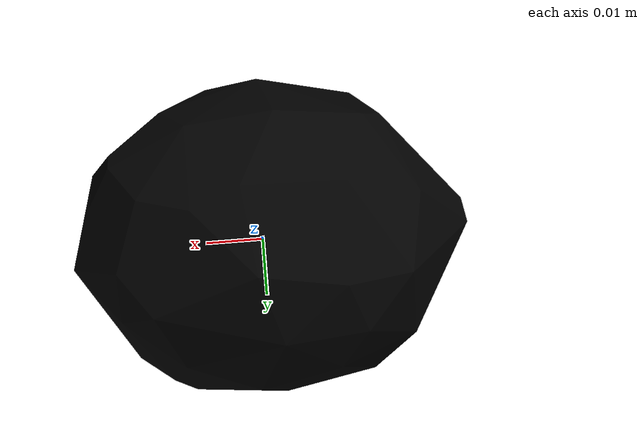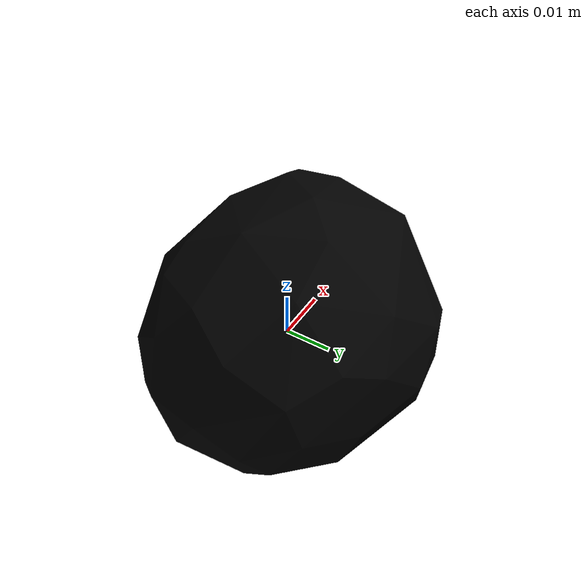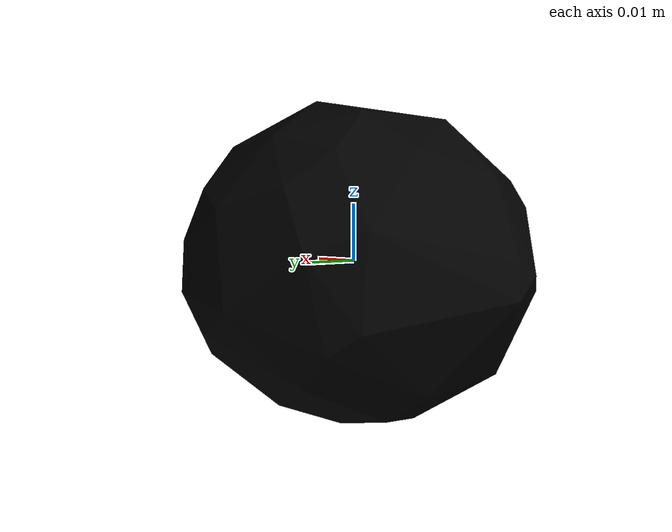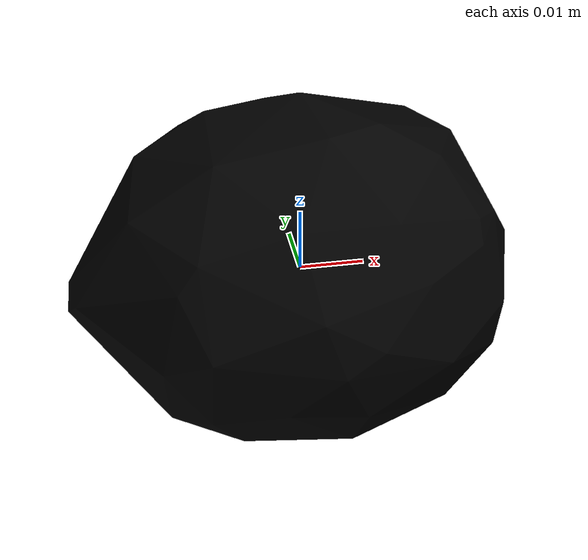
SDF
<?xml version="1.0"?>
<sdf version="1.4">
  <model name="014_lemon_textured">
    <pose>0 0 0  0 0 0</pose>
    <link name="body">
      <inertial>
        <mass> 1.0 </mass>
        <pose>0 0 0 0 0 0</pose>
        <inertia>
          <ixx>0.0002876846371559714</ixx>
          <ixy>0.0</ixy>
          <ixz>0.0</ixz>
          <iyy>0.0003504659803821685</iyy>
          <iyz>0.0</iyz>
          <izz>0.0003522363061818603</izz>
        </inertia>
      </inertial>
      <visual name="visual">
        <geometry>
          <mesh>
            <uri>model://014_lemon_textured/textured.dae</uri>
          </mesh>
        </geometry>
        <pose>-0.005014120656339055 0.0346250804271738 -0.004522193023469908 2.29321442514585 0.5727131153332129 0.43068346784477785</pose>
      </visual>
      <collision name="collision">
        <geometry>
          <mesh>
            <uri>model://014_lemon_textured/textured.col.dae</uri>
          </mesh>
        </geometry>
        <max_contacts>10</max_contacts>
        <surface>
          <friction>
            <ode>
              <mu>0.8</mu>
              <mu2>0.8</mu2>
              <slip1>0</slip1>
              <slip2>0</slip2>
            </ode>
            <torsional>
              <ode/>
            </torsional>
          </friction>
          <contact>
            <ode>
              <kp>1000000.0</kp>
              <kd>1.0</kd>
              <max_vel>0.0</max_vel>
            </ode>
          </contact>
        </surface>
        <pose>-0.005014120656339055 0.0346250804271738 -0.004522193023469908 2.29321442514585 0.5727131153332129 0.43068346784477785</pose>
      </collision>
    </link>
  </model>
</sdf>
